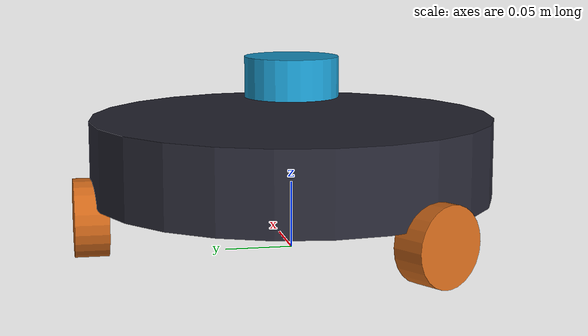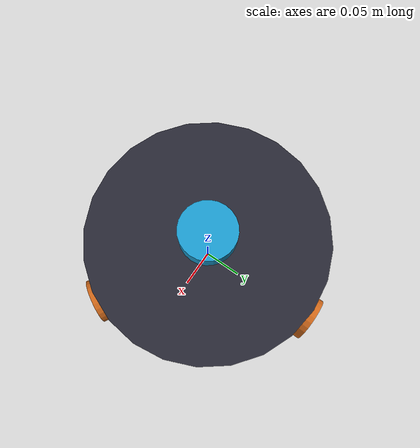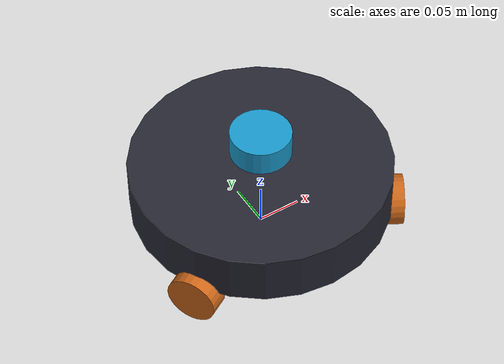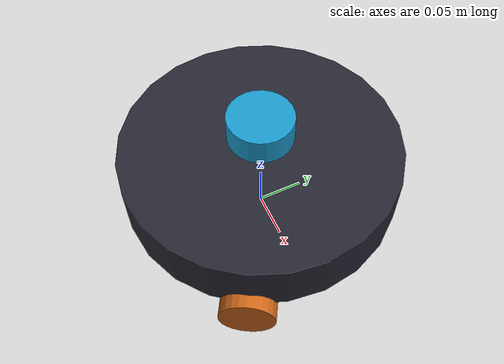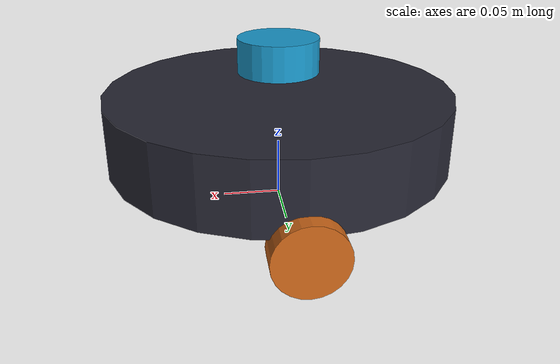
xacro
<?xml version="1.0"?>
<robot name="leonardo" xmlns:xacro="http://www.ros.org/wiki/xacro">

  <!-- Materials -->
  <material name="chassis_mat">
    <color rgba="0.15 0.15 0.20 0.95"/>
  </material>
  <material name="wheel_mat">
    <color rgba="0.80 0.40 0.10 1.0"/>
  </material>
  <material name="pen_mat">
    <color rgba="0.90 0.10 0.10 1.0"/>
  </material>
  <material name="sensor_mat">
    <color rgba="0.10 0.60 0.80 1.0"/>
  </material>

  <!-- Base Footprint (Ground Projection) -->
  <link name="base_footprint"/>

  <joint name="base_footprint_joint" type="fixed">
    <parent link="base_footprint"/>
    <child link="base_link"/>
    <origin xyz="0 0 0.05" rpy="0 0 0"/>
  </joint>

  <!-- Base Link (Chassis Body) -->
  <link name="base_link">
    <visual>
      <origin xyz="0 0 0.02" rpy="0 0 0"/>
      <geometry>
        <cylinder radius="0.15" length="0.06"/>
      </geometry>
      <material name="chassis_mat"/>
    </visual>
    <collision>
      <origin xyz="0 0 0.02" rpy="0 0 0"/>
      <geometry>
        <cylinder radius="0.15" length="0.06"/>
      </geometry>
    </collision>
    <inertial>
      <mass value="2.5"/>
      <origin xyz="0 0 0.02" rpy="0 0 0"/>
      <inertia ixx="0.0148" ixy="0" ixz="0" iyy="0.0148" iyz="0" izz="0.0281"/>
    </inertial>
  </link>

  <!-- Omni Wheels (3x at 120-deg separation, R=0.15m, r=0.029m) -->
  <!-- Wheel 1: Alpha = 0 deg (aligned along Y) -->
  <link name="wheel_1_link">
    <visual>
      <origin xyz="0 0 0" rpy="1.5708 0 0"/>
      <geometry>
        <cylinder radius="0.029" length="0.025"/>
      </geometry>
      <material name="wheel_mat"/>
    </visual>
    <collision>
      <origin xyz="0 0 0" rpy="1.5708 0 0"/>
      <geometry>
        <cylinder radius="0.029" length="0.025"/>
      </geometry>
    </collision>
  </link>
  <joint name="wheel_1_joint" type="continuous">
    <parent link="base_link"/>
    <child link="wheel_1_link"/>
    <origin xyz="0.0 0.15 -0.021" rpy="0 0 0"/>
    <axis xyz="0 1 0"/>
  </joint>

  <!-- Wheel 2: Alpha = 120 deg (xyz: -0.1299, -0.075, -0.021) -->
  <link name="wheel_2_link">
    <visual>
      <origin xyz="0 0 0" rpy="1.5708 0 0"/>
      <geometry>
        <cylinder radius="0.029" length="0.025"/>
      </geometry>
      <material name="wheel_mat"/>
    </visual>
    <collision>
      <origin xyz="0 0 0" rpy="1.5708 0 0"/>
      <geometry>
        <cylinder radius="0.029" length="0.025"/>
      </geometry>
    </collision>
  </link>
  <joint name="wheel_2_joint" type="continuous">
    <parent link="base_link"/>
    <child link="wheel_2_link"/>
    <origin xyz="-0.1299 -0.075 -0.021" rpy="0 0 2.0944"/>
    <axis xyz="0 1 0"/>
  </joint>

  <!-- Wheel 3: Alpha = 240 deg (xyz: 0.1299, -0.075, -0.021) -->
  <link name="wheel_3_link">
    <visual>
      <origin xyz="0 0 0" rpy="1.5708 0 0"/>
      <geometry>
        <cylinder radius="0.029" length="0.025"/>
      </geometry>
      <material name="wheel_mat"/>
    </visual>
    <collision>
      <origin xyz="0 0 0" rpy="1.5708 0 0"/>
      <geometry>
        <cylinder radius="0.029" length="0.025"/>
      </geometry>
    </collision>
  </link>
  <joint name="wheel_3_joint" type="continuous">
    <parent link="base_link"/>
    <child link="wheel_3_link"/>
    <origin xyz="0.1299 -0.075 -0.021" rpy="0 0 -2.0944"/>
    <axis xyz="0 1 0"/>
  </joint>

  <!-- Pen Actuator (Centered) -->
  <link name="pen_holder_link">
    <visual>
      <origin xyz="0 0 -0.01" rpy="0 0 0"/>
      <geometry>
        <cylinder radius="0.008" length="0.06"/>
      </geometry>
      <material name="pen_mat"/>
    </visual>
  </link>
  <joint name="pen_holder_joint" type="prismatic">
    <parent link="base_link"/>
    <child link="pen_holder_link"/>
    <origin xyz="0 0 0" rpy="0 0 0"/>
    <axis xyz="0 0 1"/>
    <limit lower="-0.015" upper="0.015" effort="10.0" velocity="0.1"/>
  </joint>

  <link name="pen_tip"/>
  <joint name="pen_tip_joint" type="fixed">
    <parent link="pen_holder_link"/>
    <child link="pen_tip"/>
    <origin xyz="0 0 -0.04" rpy="0 0 0"/>
  </joint>

  <!-- LiDAR Sensor -->
  <link name="laser_frame">
    <visual>
      <geometry>
        <cylinder radius="0.035" length="0.03"/>
      </geometry>
      <material name="sensor_mat"/>
    </visual>
  </link>
  <joint name="laser_joint" type="fixed">
    <parent link="base_link"/>
    <child link="laser_frame"/>
    <origin xyz="0 0 0.08" rpy="0 0 0"/>
  </joint>

  <!-- Camera (Down-facing) -->
  <link name="camera_link">
    <visual>
      <geometry>
        <box size="0.025 0.025 0.02"/>
      </geometry>
      <material name="sensor_mat"/>
    </visual>
  </link>
  <joint name="camera_joint" type="fixed">
    <parent link="base_link"/>
    <child link="camera_link"/>
    <origin xyz="0.08 0 -0.02" rpy="0 1.5708 0"/>
  </joint>

  <link name="camera_optical_link"/>
  <joint name="camera_optical_joint" type="fixed">
    <parent link="camera_link"/>
    <child link="camera_optical_link"/>
    <origin xyz="0 0 0" rpy="-1.5708 0 -1.5708"/>
  </joint>

</robot>
